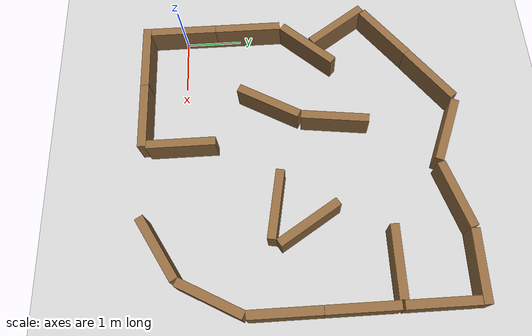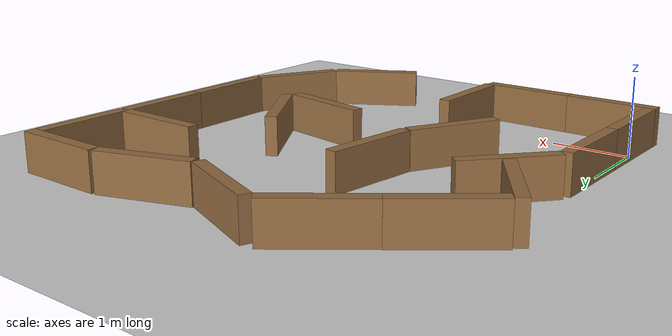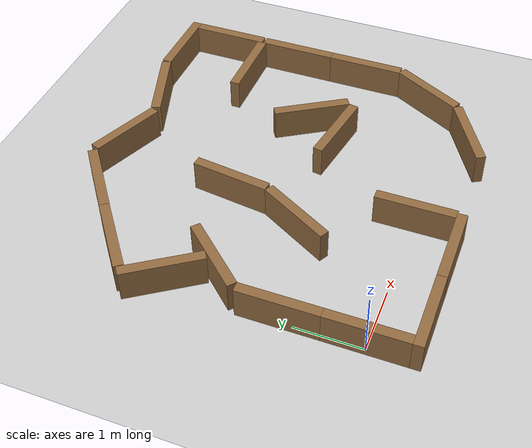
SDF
<sdf version="1.6">
 <world name="default">
  <model name="ground_plane">
   <static>1</static>
   <link name="link">
    <collision name="collision">
     <geometry><plane><normal>0 0 1</normal><size>100 100</size></plane></geometry>
     <surface><friction><ode><mu>100</mu><mu2>50</mu2></ode></friction></surface>
    </collision>
    <visual name="visual">
     <cast_shadows>0</cast_shadows>
     <geometry><plane><normal>0 0 1</normal><size>100 100</size></plane></geometry>
     <material>
      <script><uri>file://media/materials/scripts/gazebo.material</uri><name>Gazebo/Grey</name></script>
     </material>
    </visual>
   </link>
  </model>
  <light name="sun" type="directional">
   <pose>0 0 10 0 -0 0</pose>
   <diffuse>0.8 0.8 0.8 1</diffuse>
   <specular>0.1 0.1 0.1 1</specular>
   <attenuation>
    <range>1000</range>
    <constant>0.9</constant>
    <linear>0.01</linear>
    <quadratic>0.001</quadratic>
   </attenuation>
   <direction>-0.5 0.5 -1</direction>
  </light>
  <model name="wall_0">
   <static>1</static>
   <link name="papptown_wall::link">
    <pose>0 0 0.25 0 -0 0</pose>
    <collision name="collision"><geometry><box><size>0.15 1.2 0.5</size></box></geometry></collision>
    <visual name="visual">
     <geometry><box><size>0.15 1.2 0.5</size></box></geometry>
     <material>
      <ambient>0.5 0.5 0.5 1</ambient>
      <diffuse>0.57 0.417 0.25 1</diffuse>
      <specular>0.1 0.1 0.1 1</specular>
      <emissive>0 0 0 0</emissive>
     </material>
    </visual>
   </link>
  </model>
  <model name="wall_1">
   <pose>0 1.2 0 0 -0 0</pose>
   <static>1</static>
   <link name="papptown_wall::link">
    <pose>0 0 0.25 0 -0 0</pose>
    <collision name="collision"><geometry><box><size>0.15 1.2 0.5</size></box></geometry></collision>
    <visual name="visual">
     <geometry><box><size>0.15 1.2 0.5</size></box></geometry>
     <material>
      <ambient>0.5 0.5 0.5 1</ambient>
      <diffuse>0.57 0.417 0.25 1</diffuse>
      <specular>0.1 0.1 0.1 1</specular>
      <emissive>0 0 0 0</emissive>
     </material>
    </visual>
   </link>
  </model>
  <model name="wall_2">
   <pose>0.525 -0.675 0 0 -0 1.571</pose>
   <static>1</static>
   <link name="papptown_wall::link">
    <pose>0 0 0.25 0 -0 0</pose>
    <collision name="collision"><geometry><box><size>0.15 1.2 0.5</size></box></geometry></collision>
    <visual name="visual">
     <geometry><box><size>0.15 1.2 0.5</size></box></geometry>
     <material>
      <ambient>0.5 0.5 0.5 1</ambient>
      <diffuse>0.57 0.417 0.25 1</diffuse>
      <specular>0.1 0.1 0.1 1</specular>
      <emissive>0 0 0 0</emissive>
     </material>
    </visual>
   </link>
  </model>
  <model name="wall_3">
   <pose>1.725 -0.675 0 0 -0 1.571</pose>
   <static>1</static>
   <link name="papptown_wall::link">
    <pose>0 0 0.25 0 -0 0</pose>
    <collision name="collision"><geometry><box><size>0.15 1.2 0.5</size></box></geometry></collision>
    <visual name="visual">
     <geometry><box><size>0.15 1.2 0.5</size></box></geometry>
     <material>
      <ambient>0.5 0.5 0.5 1</ambient>
      <diffuse>0.57 0.417 0.25 1</diffuse>
      <specular>0.1 0.1 0.1 1</specular>
      <emissive>0 0 0 0</emissive>
     </material>
    </visual>
   </link>
  </model>
  <model name="wall_3">
   <pose>1.725 -0.675 0 0 -0 1.571</pose>
   <static>1</static>
   <link name="papptown_wall::link">
    <pose>0 0 0.25 0 -0 0</pose>
    <collision name="collision"><geometry><box><size>0.15 1.2 0.5</size></box></geometry></collision>
    <visual name="visual">
     <geometry><box><size>0.15 1.2 0.5</size></box></geometry>
     <material>
      <ambient>0.5 0.5 0.5 1</ambient>
      <diffuse>0.57 0.417 0.25 1</diffuse>
      <specular>0.1 0.1 0.1 1</specular>
      <emissive>0 0 0 0</emissive>
     </material>
    </visual>
   </link>
  </model>
  <model name="wall_4">
   <pose>4.09923 -0.359711 0 0 -0 2.094</pose>
   <static>1</static>
   <link name="papptown_wall::link">
    <pose>0 0 0.25 0 -0 0</pose>
    <collision name="collision"><geometry><box><size>0.15 1.2 0.5</size></box></geometry></collision>
    <visual name="visual">
     <geometry><box><size>0.15 1.2 0.5</size></box></geometry>
     <material>
      <ambient>0.5 0.5 0.5 1</ambient>
      <diffuse>0.57 0.417 0.25 1</diffuse>
      <specular>0.1 0.1 0.1 1</specular>
      <emissive>0 0 0 0</emissive>
     </material>
    </visual>
   </link>
  </model>
  <gravity>0 0 -9.8</gravity>
  <magnetic_field>6e-06 2.3e-05 -4.2e-05</magnetic_field>
  <atmosphere type="adiabatic"/>
  <physics name="default_physics" default="0" type="ode">
   <max_step_size>0.001</max_step_size>
   <real_time_factor>1</real_time_factor>
   <real_time_update_rate>1000</real_time_update_rate>
  </physics>
  <scene><ambient>0.4 0.4 0.4 1</ambient><background>0.7 0.7 0.7 1</background><shadows>1</shadows></scene>
  <spherical_coordinates>
   <surface_model>EARTH_WGS84</surface_model>
   <latitude_deg>0</latitude_deg>
   <longitude_deg>0</longitude_deg>
   <elevation>0</elevation>
   <heading_deg>0</heading_deg>
  </spherical_coordinates>
  <model name="papptown_wall">
   <pose>4.93067 0.490205 0 0 0 -0.496041</pose>
   <static>1</static>
   <link name="link">
    <pose>0 0 0.25 0 -0 0</pose>
    <collision name="collision"><geometry><box><size>0.15 1.2 0.5</size></box></geometry></collision>
    <visual name="visual">
     <geometry><box><size>0.15 1.2 0.5</size></box></geometry>
     <material>
      <ambient>0.5 0.5 0.5 1</ambient>
      <diffuse>0.57 0.417 0.25 1</diffuse>
      <specular>0.1 0.1 0.1 1</specular>
      <emissive>0 0 0 0</emissive>
     </material>
    </visual>
   </link>
  </model>
  <model name="papptown_wall_0">
   <pose>5.21618 1.63942 0 0 -0 0</pose>
   <static>1</static>
   <link name="link">
    <pose>0 0 0.25 0 -0 0</pose>
    <collision name="collision"><geometry><box><size>0.15 1.2 0.5</size></box></geometry></collision>
    <visual name="visual">
     <geometry><box><size>0.15 1.2 0.5</size></box></geometry>
     <material>
      <ambient>0.5 0.5 0.5 1</ambient>
      <diffuse>0.57 0.417 0.25 1</diffuse>
      <specular>0.1 0.1 0.1 1</specular>
      <emissive>0 0 0 0</emissive>
     </material>
    </visual>
   </link>
  </model>
  <model name="papptown_wall_1">
   <pose>5.21631 2.83978 0 0 -0 0</pose>
   <static>1</static>
   <link name="link">
    <pose>0 0 0.25 0 -0 0</pose>
    <collision name="collision"><geometry><box><size>0.15 1.2 0.5</size></box></geometry></collision>
    <visual name="visual">
     <geometry><box><size>0.15 1.2 0.5</size></box></geometry>
     <material>
      <ambient>0.5 0.5 0.5 1</ambient>
      <diffuse>0.57 0.417 0.25 1</diffuse>
      <specular>0.1 0.1 0.1 1</specular>
      <emissive>0 0 0 0</emissive>
     </material>
    </visual>
   </link>
  </model>
  <model name="papptown_wall_2">
   <pose>5.21763 4.07889 0 0 -0 0</pose>
   <static>1</static>
   <link name="link">
    <pose>0 0 0.25 0 -0 0</pose>
    <collision name="collision"><geometry><box><size>0.15 1.2 0.5</size></box></geometry></collision>
    <visual name="visual">
     <geometry><box><size>0.15 1.2 0.5</size></box></geometry>
     <material>
      <ambient>0.5 0.5 0.5 1</ambient>
      <diffuse>0.57 0.417 0.25 1</diffuse>
      <specular>0.1 0.1 0.1 1</specular>
      <emissive>0 0 0 0</emissive>
     </material>
    </visual>
   </link>
  </model>
  <model name="papptown_wall_3">
   <pose>4.68918 4.76256 0 0 -0 1.55804</pose>
   <static>1</static>
   <link name="link">
    <pose>0 0 0.25 0 -0 0</pose>
    <collision name="collision"><geometry><box><size>0.15 1.2 0.5</size></box></geometry></collision>
    <visual name="visual">
     <geometry><box><size>0.15 1.2 0.5</size></box></geometry>
     <material>
      <ambient>0.5 0.5 0.5 1</ambient>
      <diffuse>0.57 0.417 0.25 1</diffuse>
      <specular>0.1 0.1 0.1 1</specular>
      <emissive>0 0 0 0</emissive>
     </material>
    </visual>
   </link>
  </model>
  <model name="papptown_wall_4">
   <pose>3.49672 4.5851 0 0 0 -1.25968</pose>
   <static>1</static>
   <link name="link">
    <pose>0 0 0.25 0 -0 0</pose>
    <collision name="collision"><geometry><box><size>0.15 1.2 0.5</size></box></geometry></collision>
    <visual name="visual">
     <geometry><box><size>0.15 1.2 0.5</size></box></geometry>
     <material>
      <ambient>0.5 0.5 0.5 1</ambient>
      <diffuse>0.57 0.417 0.25 1</diffuse>
      <specular>0.1 0.1 0.1 1</specular>
      <emissive>0 0 0 0</emissive>
     </material>
    </visual>
   </link>
  </model>
  <model name="papptown_wall_6">
   <pose>2.31964 4.61357 0 0 -0 1.18295</pose>
   <static>1</static>
   <link name="link">
    <pose>0 0 0.25 0 -0 0</pose>
    <collision name="collision"><geometry><box><size>0.15 1.2 0.5</size></box></geometry></collision>
    <visual name="visual">
     <geometry><box><size>0.15 1.2 0.5</size></box></geometry>
     <material>
      <ambient>0.5 0.5 0.5 1</ambient>
      <diffuse>0.57 0.417 0.25 1</diffuse>
      <specular>0.1 0.1 0.1 1</specular>
      <emissive>0 0 0 0</emissive>
     </material>
    </visual>
   </link>
  </model>
  <model name="papptown_wall_7">
   <pose>0.418252 2.2969 0 0 0 -0.728679</pose>
   <static>1</static>
   <link name="link">
    <pose>0 0 0.25 0 -0 0</pose>
    <collision name="collision"><geometry><box><size>0.15 1.2 0.5</size></box></geometry></collision>
    <visual name="visual">
     <geometry><box><size>0.15 1.2 0.5</size></box></geometry>
     <material>
      <ambient>0.5 0.5 0.5 1</ambient>
      <diffuse>0.57 0.417 0.25 1</diffuse>
      <specular>0.1 0.1 0.1 1</specular>
      <emissive>0 0 0 0</emissive>
     </material>
    </visual>
   </link>
  </model>
  <model name="papptown_wall_8">
   <pose>0.030276 2.87465 0 0 -0 0.602379</pose>
   <static>1</static>
   <link name="link">
    <pose>0 0 0.25 0 -0 0</pose>
    <collision name="collision"><geometry><box><size>0.15 1.2 0.5</size></box></geometry></collision>
    <visual name="visual">
     <geometry><box><size>0.15 1.2 0.5</size></box></geometry>
     <material>
      <ambient>0.5 0.5 0.5 1</ambient>
      <diffuse>0.57 0.417 0.25 1</diffuse>
      <specular>0.1 0.1 0.1 1</specular>
      <emissive>0 0 0 0</emissive>
     </material>
    </visual>
   </link>
  </model>
  <model name="papptown_wall_9">
   <pose>1.203 4.47137 0 0 0 -0.92579</pose>
   <static>1</static>
   <link name="link">
    <pose>0 0 0.25 0 -0 0</pose>
    <collision name="collision"><geometry><box><size>0.15 1.2 0.5</size></box></geometry></collision>
    <visual name="visual">
     <geometry><box><size>0.15 1.2 0.5</size></box></geometry>
     <material>
      <ambient>0.5 0.5 0.5 1</ambient>
      <diffuse>0.57 0.417 0.25 1</diffuse>
      <specular>0.1 0.1 0.1 1</specular>
      <emissive>0 0 0 0</emissive>
     </material>
    </visual>
   </link>
  </model>
  <model name="papptown_wall_10">
   <pose>0.254181 3.75129 0 0 0 -0.913867</pose>
   <static>1</static>
   <link name="link">
    <pose>0 0 0.25 0 -0 0</pose>
    <collision name="collision"><geometry><box><size>0.15 1.2 0.5</size></box></geometry></collision>
    <visual name="visual">
     <geometry><box><size>0.15 1.2 0.5</size></box></geometry>
     <material>
      <ambient>0.5 0.5 0.5 1</ambient>
      <diffuse>0.57 0.417 0.25 1</diffuse>
      <specular>0.1 0.1 0.1 1</specular>
      <emissive>0 0 0 0</emissive>
     </material>
    </visual>
   </link>
  </model>
  <model name="papptown_wall_11">
   <pose>2.29507 -0.006511 0 0 -0 0</pose>
   <static>1</static>
   <link name="link">
    <pose>0 0 0.25 0 -0 0</pose>
    <collision name="collision"><geometry><box><size>0.15 1.2 0.5</size></box></geometry></collision>
    <visual name="visual">
     <geometry><box><size>0.15 1.2 0.5</size></box></geometry>
     <material>
      <ambient>0.5 0.5 0.5 1</ambient>
      <diffuse>0.57 0.417 0.25 1</diffuse>
      <specular>0.1 0.1 0.1 1</specular>
      <emissive>0 0 0 0</emissive>
     </material>
    </visual>
   </link>
  </model>
  <model name="papptown_wall_12">
   <pose>4.53972 3.47793 0 0 -0 1.56875</pose>
   <static>1</static>
   <link name="link">
    <pose>0 0 0.25 0 -0 0</pose>
    <collision name="collision"><geometry><box><size>0.15 1.2 0.5</size></box></geometry></collision>
    <visual name="visual">
     <geometry><box><size>0.15 1.2 0.5</size></box></geometry>
     <material>
      <ambient>0.5 0.5 0.5 1</ambient>
      <diffuse>0.57 0.417 0.25 1</diffuse>
      <specular>0.1 0.1 0.1 1</specular>
      <emissive>0 0 0 0</emissive>
     </material>
    </visual>
   </link>
  </model>
  <model name="papptown_wall_13">
   <pose>1.57488 1.53745 0 0 0 -0.505883</pose>
   <static>1</static>
   <link name="link">
    <pose>0 0 0.25 0 -0 0</pose>
    <collision name="collision"><geometry><box><size>0.15 1.2 0.5</size></box></geometry></collision>
    <visual name="visual">
     <geometry><box><size>0.15 1.2 0.5</size></box></geometry>
     <material>
      <ambient>0.5 0.5 0.5 1</ambient>
      <diffuse>0.57 0.417 0.25 1</diffuse>
      <specular>0.1 0.1 0.1 1</specular>
      <emissive>0 0 0 0</emissive>
     </material>
    </visual>
   </link>
  </model>
  <model name="papptown_wall_14">
   <pose>1.95168 2.68569 0 0 0 -0.123846</pose>
   <static>1</static>
   <link name="link">
    <pose>0 0 0.25 0 -0 0</pose>
    <collision name="collision"><geometry><box><size>0.15 1.2 0.5</size></box></geometry></collision>
    <visual name="visual">
     <geometry><box><size>0.15 1.2 0.5</size></box></geometry>
     <material>
      <ambient>0.5 0.5 0.5 1</ambient>
      <diffuse>0.57 0.417 0.25 1</diffuse>
      <specular>0.1 0.1 0.1 1</specular>
      <emissive>0 0 0 0</emissive>
     </material>
    </visual>
   </link>
  </model>
  <model name="papptown_wall_15">
   <pose>3.48118 1.58183 0 0 0 -1.73706</pose>
   <static>1</static>
   <link name="link">
    <pose>0 0 0.25 0 -0 0</pose>
    <collision name="collision"><geometry><box><size>0.15 1.2 0.5</size></box></geometry></collision>
    <visual name="visual">
     <geometry><box><size>0.15 1.2 0.5</size></box></geometry>
     <material>
      <ambient>0.5 0.5 0.5 1</ambient>
      <diffuse>0.57 0.417 0.25 1</diffuse>
      <specular>0.1 0.1 0.1 1</specular>
      <emissive>0 0 0 0</emissive>
     </material>
    </visual>
   </link>
  </model>
  <model name="papptown_wall_16">
   <pose>3.82414 2.10601 0 0 -0 0.561862</pose>
   <static>1</static>
   <link name="link">
    <pose>0 0 0.25 0 -0 0</pose>
    <collision name="collision"><geometry><box><size>0.15 1.2 0.5</size></box></geometry></collision>
    <visual name="visual">
     <geometry><box><size>0.15 1.2 0.5</size></box></geometry>
     <material>
      <ambient>0.5 0.5 0.5 1</ambient>
      <diffuse>0.57 0.417 0.25 1</diffuse>
      <specular>0.1 0.1 0.1 1</specular>
      <emissive>0 0 0 0</emissive>
     </material>
    </visual>
   </link>
  </model>
 </world>
</sdf>
